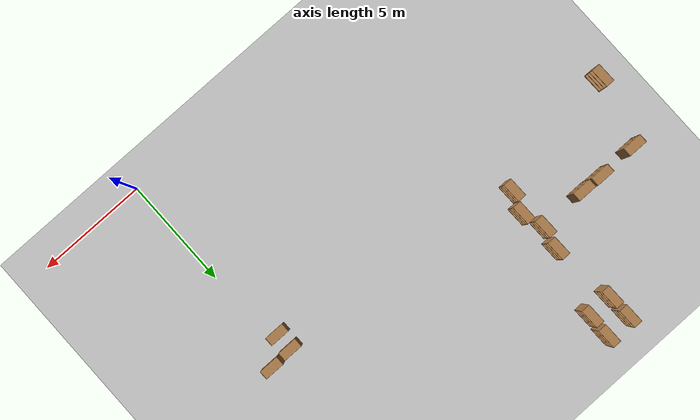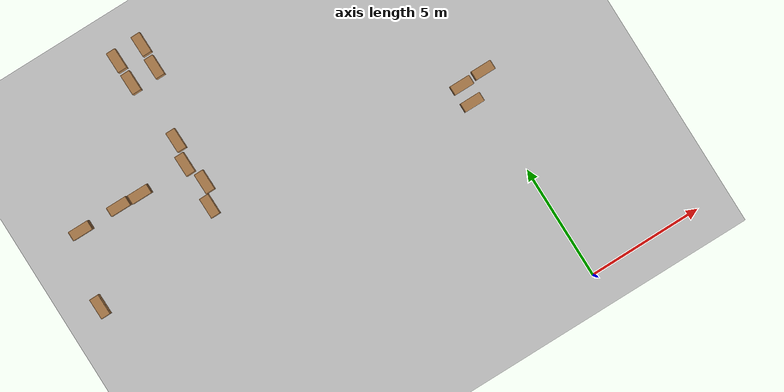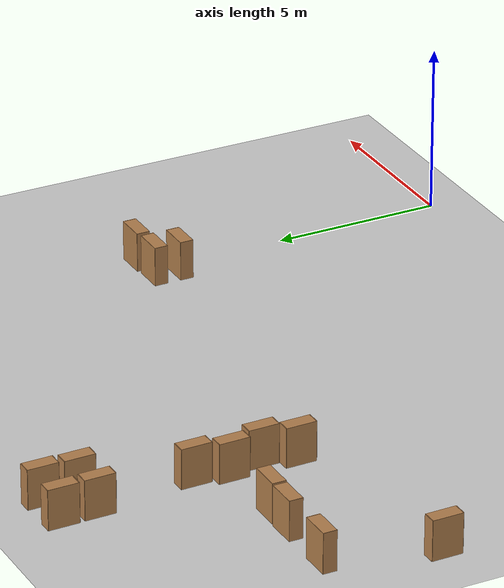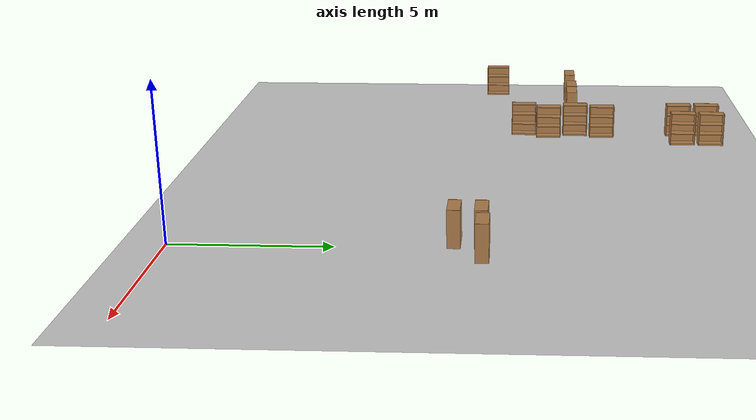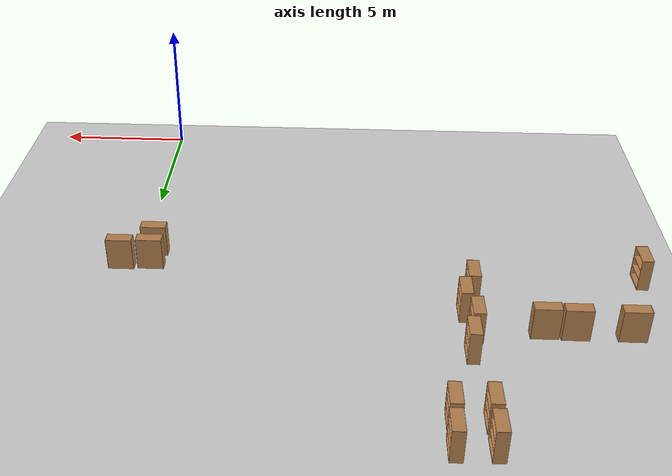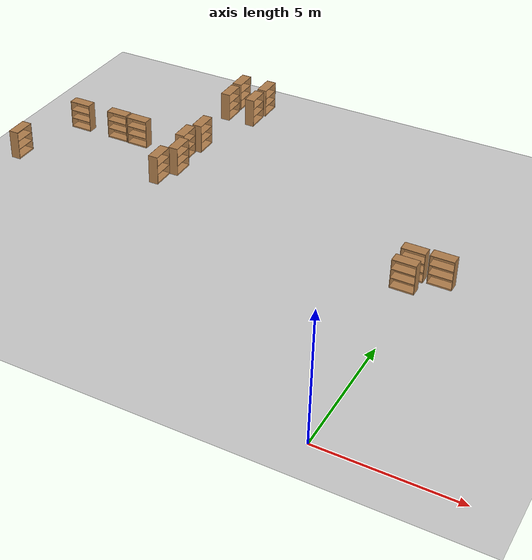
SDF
<sdf version="1.6">
 <world name="default">
  <model name="ground_plane">
   <static>1</static>
   <link name="link">
    <collision name="collision">
     <geometry><plane><normal>0 0 1</normal><size>100 100</size></plane></geometry>
     <surface>
      <contact><collide_bitmask>65535</collide_bitmask></contact>
      <friction><ode><mu>100</mu><mu2>50</mu2></ode></friction>
     </surface>
    </collision>
    <visual name="visual">
     <cast_shadows>0</cast_shadows>
     <geometry><plane><normal>0 0 1</normal><size>100 100</size></plane></geometry>
     <material>
      <script><uri>file://media/materials/scripts/gazebo.material</uri><name>Gazebo/Grey</name></script>
     </material>
    </visual>
   </link>
  </model>
  <model name="bookshelf_clone_clone">
   <static>1</static>
   <link name="link">
    <inertial><mass>1</mass></inertial>
    <collision name="back">
     <pose>0 0.005 0.6 0 -0 0</pose>
     <geometry><box><size>0.9 0.01 1.2</size></box></geometry>
    </collision>
    <visual name="visual1">
     <pose>0 0.005 0.6 0 -0 0</pose>
     <geometry><box><size>0.9 0.01 1.2</size></box></geometry>
     <material>
      <script><uri>file://media/materials/scripts/gazebo.material</uri><name>Gazebo/Wood</name></script>
     </material>
    </visual>
    <collision name="left_side">
     <pose>0.45 -0.195 0.6 0 -0 0</pose>
     <geometry><box><size>0.02 0.4 1.2</size></box></geometry>
    </collision>
    <visual name="visual2">
     <pose>0.45 -0.195 0.6 0 -0 0</pose>
     <geometry><box><size>0.02 0.4 1.2</size></box></geometry>
     <material>
      <script><uri>file://media/materials/scripts/gazebo.material</uri><name>Gazebo/Wood</name></script>
     </material>
    </visual>
    <collision name="right_side">
     <pose>-0.45 -0.195 0.6 0 -0 0</pose>
     <geometry><box><size>0.02 0.4 1.2</size></box></geometry>
    </collision>
    <visual name="visual3">
     <pose>-0.45 -0.195 0.6 0 -0 0</pose>
     <geometry><box><size>0.02 0.4 1.2</size></box></geometry>
     <material>
      <script><uri>file://media/materials/scripts/gazebo.material</uri><name>Gazebo/Wood</name></script>
     </material>
    </visual>
    <collision name="bottom">
     <pose>0 -0.195 0.03 0 -0 0</pose>
     <geometry><box><size>0.88 0.4 0.06</size></box></geometry>
    </collision>
    <visual name="visual4">
     <pose>0 -0.195 0.03 0 -0 0</pose>
     <geometry><box><size>0.88 0.4 0.06</size></box></geometry>
     <material>
      <script><uri>file://media/materials/scripts/gazebo.material</uri><name>Gazebo/Wood</name></script>
     </material>
    </visual>
    <collision name="top">
     <pose>0 -0.195 1.19 0 -0 0</pose>
     <geometry><box><size>0.88 0.4 0.02</size></box></geometry>
    </collision>
    <visual name="visual5">
     <pose>0 -0.195 1.19 0 -0 0</pose>
     <geometry><box><size>0.88 0.4 0.02</size></box></geometry>
     <material>
      <script><uri>file://media/materials/scripts/gazebo.material</uri><name>Gazebo/Wood</name></script>
     </material>
    </visual>
    <collision name="low_shelf">
     <pose>0 -0.195 0.43 0 -0 0</pose>
     <geometry><box><size>0.88 0.4 0.02</size></box></geometry>
    </collision>
    <visual name="visual6">
     <pose>0 -0.195 0.43 0 -0 0</pose>
     <geometry><box><size>0.88 0.4 0.02</size></box></geometry>
     <material>
      <script><uri>file://media/materials/scripts/gazebo.material</uri><name>Gazebo/Wood</name></script>
     </material>
    </visual>
    <collision name="high_shelf">
     <pose>0 -0.195 0.8 0 -0 0</pose>
     <geometry><box><size>0.88 0.4 0.02</size></box></geometry>
    </collision>
    <visual name="visual7">
     <pose>0 -0.195 0.8 0 -0 0</pose>
     <geometry><box><size>0.88 0.4 0.02</size></box></geometry>
     <material>
      <script><uri>file://media/materials/scripts/gazebo.material</uri><name>Gazebo/Wood</name></script>
     </material>
    </visual>
   </link>
   <pose>-16.536 12.6596 0 0 -0 0</pose>
  </model>
  <model name="bookshelf_clone_clone_1">
   <static>1</static>
   <link name="link">
    <inertial><mass>1</mass></inertial>
    <collision name="back">
     <pose>0 0.005 0.6 0 -0 0</pose>
     <geometry><box><size>0.9 0.01 1.2</size></box></geometry>
    </collision>
    <visual name="visual1">
     <pose>0 0.005 0.6 0 -0 0</pose>
     <geometry><box><size>0.9 0.01 1.2</size></box></geometry>
     <material>
      <script><uri>file://media/materials/scripts/gazebo.material</uri><name>Gazebo/Wood</name></script>
     </material>
    </visual>
    <collision name="left_side">
     <pose>0.45 -0.195 0.6 0 -0 0</pose>
     <geometry><box><size>0.02 0.4 1.2</size></box></geometry>
    </collision>
    <visual name="visual2">
     <pose>0.45 -0.195 0.6 0 -0 0</pose>
     <geometry><box><size>0.02 0.4 1.2</size></box></geometry>
     <material>
      <script><uri>file://media/materials/scripts/gazebo.material</uri><name>Gazebo/Wood</name></script>
     </material>
    </visual>
    <collision name="right_side">
     <pose>-0.45 -0.195 0.6 0 -0 0</pose>
     <geometry><box><size>0.02 0.4 1.2</size></box></geometry>
    </collision>
    <visual name="visual3">
     <pose>-0.45 -0.195 0.6 0 -0 0</pose>
     <geometry><box><size>0.02 0.4 1.2</size></box></geometry>
     <material>
      <script><uri>file://media/materials/scripts/gazebo.material</uri><name>Gazebo/Wood</name></script>
     </material>
    </visual>
    <collision name="bottom">
     <pose>0 -0.195 0.03 0 -0 0</pose>
     <geometry><box><size>0.88 0.4 0.06</size></box></geometry>
    </collision>
    <visual name="visual4">
     <pose>0 -0.195 0.03 0 -0 0</pose>
     <geometry><box><size>0.88 0.4 0.06</size></box></geometry>
     <material>
      <script><uri>file://media/materials/scripts/gazebo.material</uri><name>Gazebo/Wood</name></script>
     </material>
    </visual>
    <collision name="top">
     <pose>0 -0.195 1.19 0 -0 0</pose>
     <geometry><box><size>0.88 0.4 0.02</size></box></geometry>
    </collision>
    <visual name="visual5">
     <pose>0 -0.195 1.19 0 -0 0</pose>
     <geometry><box><size>0.88 0.4 0.02</size></box></geometry>
     <material>
      <script><uri>file://media/materials/scripts/gazebo.material</uri><name>Gazebo/Wood</name></script>
     </material>
    </visual>
    <collision name="low_shelf">
     <pose>0 -0.195 0.43 0 -0 0</pose>
     <geometry><box><size>0.88 0.4 0.02</size></box></geometry>
    </collision>
    <visual name="visual6">
     <pose>0 -0.195 0.43 0 -0 0</pose>
     <geometry><box><size>0.88 0.4 0.02</size></box></geometry>
     <material>
      <script><uri>file://media/materials/scripts/gazebo.material</uri><name>Gazebo/Wood</name></script>
     </material>
    </visual>
    <collision name="high_shelf">
     <pose>0 -0.195 0.8 0 -0 0</pose>
     <geometry><box><size>0.88 0.4 0.02</size></box></geometry>
    </collision>
    <visual name="visual7">
     <pose>0 -0.195 0.8 0 -0 0</pose>
     <geometry><box><size>0.88 0.4 0.02</size></box></geometry>
     <material>
      <script><uri>file://media/materials/scripts/gazebo.material</uri><name>Gazebo/Wood</name></script>
     </material>
    </visual>
   </link>
   <pose>-14.7265 12.6733 0 0 -0 0</pose>
  </model>
  <model name="bookshelf_clone_clone_2">
   <static>1</static>
   <link name="link">
    <inertial><mass>1</mass></inertial>
    <collision name="back">
     <pose>0 0.005 0.6 0 -0 0</pose>
     <geometry><box><size>0.9 0.01 1.2</size></box></geometry>
    </collision>
    <visual name="visual1">
     <pose>0 0.005 0.6 0 -0 0</pose>
     <geometry><box><size>0.9 0.01 1.2</size></box></geometry>
     <material>
      <script><uri>file://media/materials/scripts/gazebo.material</uri><name>Gazebo/Wood</name></script>
     </material>
    </visual>
    <collision name="left_side">
     <pose>0.45 -0.195 0.6 0 -0 0</pose>
     <geometry><box><size>0.02 0.4 1.2</size></box></geometry>
    </collision>
    <visual name="visual2">
     <pose>0.45 -0.195 0.6 0 -0 0</pose>
     <geometry><box><size>0.02 0.4 1.2</size></box></geometry>
     <material>
      <script><uri>file://media/materials/scripts/gazebo.material</uri><name>Gazebo/Wood</name></script>
     </material>
    </visual>
    <collision name="right_side">
     <pose>-0.45 -0.195 0.6 0 -0 0</pose>
     <geometry><box><size>0.02 0.4 1.2</size></box></geometry>
    </collision>
    <visual name="visual3">
     <pose>-0.45 -0.195 0.6 0 -0 0</pose>
     <geometry><box><size>0.02 0.4 1.2</size></box></geometry>
     <material>
      <script><uri>file://media/materials/scripts/gazebo.material</uri><name>Gazebo/Wood</name></script>
     </material>
    </visual>
    <collision name="bottom">
     <pose>0 -0.195 0.03 0 -0 0</pose>
     <geometry><box><size>0.88 0.4 0.06</size></box></geometry>
    </collision>
    <visual name="visual4">
     <pose>0 -0.195 0.03 0 -0 0</pose>
     <geometry><box><size>0.88 0.4 0.06</size></box></geometry>
     <material>
      <script><uri>file://media/materials/scripts/gazebo.material</uri><name>Gazebo/Wood</name></script>
     </material>
    </visual>
    <collision name="top">
     <pose>0 -0.195 1.19 0 -0 0</pose>
     <geometry><box><size>0.88 0.4 0.02</size></box></geometry>
    </collision>
    <visual name="visual5">
     <pose>0 -0.195 1.19 0 -0 0</pose>
     <geometry><box><size>0.88 0.4 0.02</size></box></geometry>
     <material>
      <script><uri>file://media/materials/scripts/gazebo.material</uri><name>Gazebo/Wood</name></script>
     </material>
    </visual>
    <collision name="low_shelf">
     <pose>0 -0.195 0.43 0 -0 0</pose>
     <geometry><box><size>0.88 0.4 0.02</size></box></geometry>
    </collision>
    <visual name="visual6">
     <pose>0 -0.195 0.43 0 -0 0</pose>
     <geometry><box><size>0.88 0.4 0.02</size></box></geometry>
     <material>
      <script><uri>file://media/materials/scripts/gazebo.material</uri><name>Gazebo/Wood</name></script>
     </material>
    </visual>
    <collision name="high_shelf">
     <pose>0 -0.195 0.8 0 -0 0</pose>
     <geometry><box><size>0.88 0.4 0.02</size></box></geometry>
    </collision>
    <visual name="visual7">
     <pose>0 -0.195 0.8 0 -0 0</pose>
     <geometry><box><size>0.88 0.4 0.02</size></box></geometry>
     <material>
      <script><uri>file://media/materials/scripts/gazebo.material</uri><name>Gazebo/Wood</name></script>
     </material>
    </visual>
   </link>
   <pose>-13.7508 12.6465 0 0 -0 0</pose>
  </model>
  <model name="bookshelf_clone_clone_0_clone_clone_4">
   <static>1</static>
   <link name="link">
    <inertial><mass>1</mass></inertial>
    <collision name="back">
     <pose>0 0.005 0.6 0 -0 0</pose>
     <geometry><box><size>0.9 0.01 1.2</size></box></geometry>
    </collision>
    <visual name="visual1">
     <pose>0 0.005 0.6 0 -0 0</pose>
     <geometry><box><size>0.9 0.01 1.2</size></box></geometry>
     <material>
      <script><uri>file://media/materials/scripts/gazebo.material</uri><name>Gazebo/Wood</name></script>
     </material>
    </visual>
    <collision name="left_side">
     <pose>0.45 -0.195 0.6 0 -0 0</pose>
     <geometry><box><size>0.02 0.4 1.2</size></box></geometry>
    </collision>
    <visual name="visual2">
     <pose>0.45 -0.195 0.6 0 -0 0</pose>
     <geometry><box><size>0.02 0.4 1.2</size></box></geometry>
     <material>
      <script><uri>file://media/materials/scripts/gazebo.material</uri><name>Gazebo/Wood</name></script>
     </material>
    </visual>
    <collision name="right_side">
     <pose>-0.45 -0.195 0.6 0 -0 0</pose>
     <geometry><box><size>0.02 0.4 1.2</size></box></geometry>
    </collision>
    <visual name="visual3">
     <pose>-0.45 -0.195 0.6 0 -0 0</pose>
     <geometry><box><size>0.02 0.4 1.2</size></box></geometry>
     <material>
      <script><uri>file://media/materials/scripts/gazebo.material</uri><name>Gazebo/Wood</name></script>
     </material>
    </visual>
    <collision name="bottom">
     <pose>0 -0.195 0.03 0 -0 0</pose>
     <geometry><box><size>0.88 0.4 0.06</size></box></geometry>
    </collision>
    <visual name="visual4">
     <pose>0 -0.195 0.03 0 -0 0</pose>
     <geometry><box><size>0.88 0.4 0.06</size></box></geometry>
     <material>
      <script><uri>file://media/materials/scripts/gazebo.material</uri><name>Gazebo/Wood</name></script>
     </material>
    </visual>
    <collision name="top">
     <pose>0 -0.195 1.19 0 -0 0</pose>
     <geometry><box><size>0.88 0.4 0.02</size></box></geometry>
    </collision>
    <visual name="visual5">
     <pose>0 -0.195 1.19 0 -0 0</pose>
     <geometry><box><size>0.88 0.4 0.02</size></box></geometry>
     <material>
      <script><uri>file://media/materials/scripts/gazebo.material</uri><name>Gazebo/Wood</name></script>
     </material>
    </visual>
    <collision name="low_shelf">
     <pose>0 -0.195 0.43 0 -0 0</pose>
     <geometry><box><size>0.88 0.4 0.02</size></box></geometry>
    </collision>
    <visual name="visual6">
     <pose>0 -0.195 0.43 0 -0 0</pose>
     <geometry><box><size>0.88 0.4 0.02</size></box></geometry>
     <material>
      <script><uri>file://media/materials/scripts/gazebo.material</uri><name>Gazebo/Wood</name></script>
     </material>
    </visual>
    <collision name="high_shelf">
     <pose>0 -0.195 0.8 0 -0 0</pose>
     <geometry><box><size>0.88 0.4 0.02</size></box></geometry>
    </collision>
    <visual name="visual7">
     <pose>0 -0.195 0.8 0 -0 0</pose>
     <geometry><box><size>0.88 0.4 0.02</size></box></geometry>
     <material>
      <script><uri>file://media/materials/scripts/gazebo.material</uri><name>Gazebo/Wood</name></script>
     </material>
    </visual>
   </link>
   <pose>-17.6956 9.45552 0 0 -0 1.58018</pose>
  </model>
  <model name="bookshelf_clone_clone_0_clone_clone_4_clone">
   <static>1</static>
   <link name="link">
    <inertial><mass>1</mass></inertial>
    <collision name="back">
     <pose>0 0.005 0.6 0 -0 0</pose>
     <geometry><box><size>0.9 0.01 1.2</size></box></geometry>
    </collision>
    <visual name="visual1">
     <pose>0 0.005 0.6 0 -0 0</pose>
     <geometry><box><size>0.9 0.01 1.2</size></box></geometry>
     <material>
      <script><uri>file://media/materials/scripts/gazebo.material</uri><name>Gazebo/Wood</name></script>
     </material>
    </visual>
    <collision name="left_side">
     <pose>0.45 -0.195 0.6 0 -0 0</pose>
     <geometry><box><size>0.02 0.4 1.2</size></box></geometry>
    </collision>
    <visual name="visual2">
     <pose>0.45 -0.195 0.6 0 -0 0</pose>
     <geometry><box><size>0.02 0.4 1.2</size></box></geometry>
     <material>
      <script><uri>file://media/materials/scripts/gazebo.material</uri><name>Gazebo/Wood</name></script>
     </material>
    </visual>
    <collision name="right_side">
     <pose>-0.45 -0.195 0.6 0 -0 0</pose>
     <geometry><box><size>0.02 0.4 1.2</size></box></geometry>
    </collision>
    <visual name="visual3">
     <pose>-0.45 -0.195 0.6 0 -0 0</pose>
     <geometry><box><size>0.02 0.4 1.2</size></box></geometry>
     <material>
      <script><uri>file://media/materials/scripts/gazebo.material</uri><name>Gazebo/Wood</name></script>
     </material>
    </visual>
    <collision name="bottom">
     <pose>0 -0.195 0.03 0 -0 0</pose>
     <geometry><box><size>0.88 0.4 0.06</size></box></geometry>
    </collision>
    <visual name="visual4">
     <pose>0 -0.195 0.03 0 -0 0</pose>
     <geometry><box><size>0.88 0.4 0.06</size></box></geometry>
     <material>
      <script><uri>file://media/materials/scripts/gazebo.material</uri><name>Gazebo/Wood</name></script>
     </material>
    </visual>
    <collision name="top">
     <pose>0 -0.195 1.19 0 -0 0</pose>
     <geometry><box><size>0.88 0.4 0.02</size></box></geometry>
    </collision>
    <visual name="visual5">
     <pose>0 -0.195 1.19 0 -0 0</pose>
     <geometry><box><size>0.88 0.4 0.02</size></box></geometry>
     <material>
      <script><uri>file://media/materials/scripts/gazebo.material</uri><name>Gazebo/Wood</name></script>
     </material>
    </visual>
    <collision name="low_shelf">
     <pose>0 -0.195 0.43 0 -0 0</pose>
     <geometry><box><size>0.88 0.4 0.02</size></box></geometry>
    </collision>
    <visual name="visual6">
     <pose>0 -0.195 0.43 0 -0 0</pose>
     <geometry><box><size>0.88 0.4 0.02</size></box></geometry>
     <material>
      <script><uri>file://media/materials/scripts/gazebo.material</uri><name>Gazebo/Wood</name></script>
     </material>
    </visual>
    <collision name="high_shelf">
     <pose>0 -0.195 0.8 0 -0 0</pose>
     <geometry><box><size>0.88 0.4 0.02</size></box></geometry>
    </collision>
    <visual name="visual7">
     <pose>0 -0.195 0.8 0 -0 0</pose>
     <geometry><box><size>0.88 0.4 0.02</size></box></geometry>
     <material>
      <script><uri>file://media/materials/scripts/gazebo.material</uri><name>Gazebo/Wood</name></script>
     </material>
    </visual>
   </link>
   <pose>-11.5559 13.501 0 0 -0 1.58018</pose>
  </model>
  <model name="bookshelf_clone_clone_0_clone_clone_4_clone_0">
   <static>1</static>
   <link name="link">
    <inertial><mass>1</mass></inertial>
    <collision name="back">
     <pose>0 0.005 0.6 0 -0 0</pose>
     <geometry><box><size>0.9 0.01 1.2</size></box></geometry>
    </collision>
    <visual name="visual1">
     <pose>0 0.005 0.6 0 -0 0</pose>
     <geometry><box><size>0.9 0.01 1.2</size></box></geometry>
     <material>
      <script><uri>file://media/materials/scripts/gazebo.material</uri><name>Gazebo/Wood</name></script>
     </material>
    </visual>
    <collision name="left_side">
     <pose>0.45 -0.195 0.6 0 -0 0</pose>
     <geometry><box><size>0.02 0.4 1.2</size></box></geometry>
    </collision>
    <visual name="visual2">
     <pose>0.45 -0.195 0.6 0 -0 0</pose>
     <geometry><box><size>0.02 0.4 1.2</size></box></geometry>
     <material>
      <script><uri>file://media/materials/scripts/gazebo.material</uri><name>Gazebo/Wood</name></script>
     </material>
    </visual>
    <collision name="right_side">
     <pose>-0.45 -0.195 0.6 0 -0 0</pose>
     <geometry><box><size>0.02 0.4 1.2</size></box></geometry>
    </collision>
    <visual name="visual3">
     <pose>-0.45 -0.195 0.6 0 -0 0</pose>
     <geometry><box><size>0.02 0.4 1.2</size></box></geometry>
     <material>
      <script><uri>file://media/materials/scripts/gazebo.material</uri><name>Gazebo/Wood</name></script>
     </material>
    </visual>
    <collision name="bottom">
     <pose>0 -0.195 0.03 0 -0 0</pose>
     <geometry><box><size>0.88 0.4 0.06</size></box></geometry>
    </collision>
    <visual name="visual4">
     <pose>0 -0.195 0.03 0 -0 0</pose>
     <geometry><box><size>0.88 0.4 0.06</size></box></geometry>
     <material>
      <script><uri>file://media/materials/scripts/gazebo.material</uri><name>Gazebo/Wood</name></script>
     </material>
    </visual>
    <collision name="top">
     <pose>0 -0.195 1.19 0 -0 0</pose>
     <geometry><box><size>0.88 0.4 0.02</size></box></geometry>
    </collision>
    <visual name="visual5">
     <pose>0 -0.195 1.19 0 -0 0</pose>
     <geometry><box><size>0.88 0.4 0.02</size></box></geometry>
     <material>
      <script><uri>file://media/materials/scripts/gazebo.material</uri><name>Gazebo/Wood</name></script>
     </material>
    </visual>
    <collision name="low_shelf">
     <pose>0 -0.195 0.43 0 -0 0</pose>
     <geometry><box><size>0.88 0.4 0.02</size></box></geometry>
    </collision>
    <visual name="visual6">
     <pose>0 -0.195 0.43 0 -0 0</pose>
     <geometry><box><size>0.88 0.4 0.02</size></box></geometry>
     <material>
      <script><uri>file://media/materials/scripts/gazebo.material</uri><name>Gazebo/Wood</name></script>
     </material>
    </visual>
    <collision name="high_shelf">
     <pose>0 -0.195 0.8 0 -0 0</pose>
     <geometry><box><size>0.88 0.4 0.02</size></box></geometry>
    </collision>
    <visual name="visual7">
     <pose>0 -0.195 0.8 0 -0 0</pose>
     <geometry><box><size>0.88 0.4 0.02</size></box></geometry>
     <material>
      <script><uri>file://media/materials/scripts/gazebo.material</uri><name>Gazebo/Wood</name></script>
     </material>
    </visual>
   </link>
   <pose>-11.7668 12.4979 0 0 -0 1.58018</pose>
  </model>
  <model name="bookshelf_clone_clone_0_clone_clone_4_clone_1">
   <static>1</static>
   <link name="link">
    <inertial><mass>1</mass></inertial>
    <collision name="back">
     <pose>0 0.005 0.6 0 -0 0</pose>
     <geometry><box><size>0.9 0.01 1.2</size></box></geometry>
    </collision>
    <visual name="visual1">
     <pose>0 0.005 0.6 0 -0 0</pose>
     <geometry><box><size>0.9 0.01 1.2</size></box></geometry>
     <material>
      <script><uri>file://media/materials/scripts/gazebo.material</uri><name>Gazebo/Wood</name></script>
     </material>
    </visual>
    <collision name="left_side">
     <pose>0.45 -0.195 0.6 0 -0 0</pose>
     <geometry><box><size>0.02 0.4 1.2</size></box></geometry>
    </collision>
    <visual name="visual2">
     <pose>0.45 -0.195 0.6 0 -0 0</pose>
     <geometry><box><size>0.02 0.4 1.2</size></box></geometry>
     <material>
      <script><uri>file://media/materials/scripts/gazebo.material</uri><name>Gazebo/Wood</name></script>
     </material>
    </visual>
    <collision name="right_side">
     <pose>-0.45 -0.195 0.6 0 -0 0</pose>
     <geometry><box><size>0.02 0.4 1.2</size></box></geometry>
    </collision>
    <visual name="visual3">
     <pose>-0.45 -0.195 0.6 0 -0 0</pose>
     <geometry><box><size>0.02 0.4 1.2</size></box></geometry>
     <material>
      <script><uri>file://media/materials/scripts/gazebo.material</uri><name>Gazebo/Wood</name></script>
     </material>
    </visual>
    <collision name="bottom">
     <pose>0 -0.195 0.03 0 -0 0</pose>
     <geometry><box><size>0.88 0.4 0.06</size></box></geometry>
    </collision>
    <visual name="visual4">
     <pose>0 -0.195 0.03 0 -0 0</pose>
     <geometry><box><size>0.88 0.4 0.06</size></box></geometry>
     <material>
      <script><uri>file://media/materials/scripts/gazebo.material</uri><name>Gazebo/Wood</name></script>
     </material>
    </visual>
    <collision name="top">
     <pose>0 -0.195 1.19 0 -0 0</pose>
     <geometry><box><size>0.88 0.4 0.02</size></box></geometry>
    </collision>
    <visual name="visual5">
     <pose>0 -0.195 1.19 0 -0 0</pose>
     <geometry><box><size>0.88 0.4 0.02</size></box></geometry>
     <material>
      <script><uri>file://media/materials/scripts/gazebo.material</uri><name>Gazebo/Wood</name></script>
     </material>
    </visual>
    <collision name="low_shelf">
     <pose>0 -0.195 0.43 0 -0 0</pose>
     <geometry><box><size>0.88 0.4 0.02</size></box></geometry>
    </collision>
    <visual name="visual6">
     <pose>0 -0.195 0.43 0 -0 0</pose>
     <geometry><box><size>0.88 0.4 0.02</size></box></geometry>
     <material>
      <script><uri>file://media/materials/scripts/gazebo.material</uri><name>Gazebo/Wood</name></script>
     </material>
    </visual>
    <collision name="high_shelf">
     <pose>0 -0.195 0.8 0 -0 0</pose>
     <geometry><box><size>0.88 0.4 0.02</size></box></geometry>
    </collision>
    <visual name="visual7">
     <pose>0 -0.195 0.8 0 -0 0</pose>
     <geometry><box><size>0.88 0.4 0.02</size></box></geometry>
     <material>
      <script><uri>file://media/materials/scripts/gazebo.material</uri><name>Gazebo/Wood</name></script>
     </material>
    </visual>
   </link>
   <pose>-11.4727 11.4806 0 0 -0 1.58018</pose>
  </model>
  <model name="bookshelf_clone_clone_0_clone_clone_4_clone_2">
   <static>1</static>
   <link name="link">
    <inertial><mass>1</mass></inertial>
    <collision name="back">
     <pose>0 0.005 0.6 0 -0 0</pose>
     <geometry><box><size>0.9 0.01 1.2</size></box></geometry>
    </collision>
    <visual name="visual1">
     <pose>0 0.005 0.6 0 -0 0</pose>
     <geometry><box><size>0.9 0.01 1.2</size></box></geometry>
     <material>
      <script><uri>file://media/materials/scripts/gazebo.material</uri><name>Gazebo/Wood</name></script>
     </material>
    </visual>
    <collision name="left_side">
     <pose>0.45 -0.195 0.6 0 -0 0</pose>
     <geometry><box><size>0.02 0.4 1.2</size></box></geometry>
    </collision>
    <visual name="visual2">
     <pose>0.45 -0.195 0.6 0 -0 0</pose>
     <geometry><box><size>0.02 0.4 1.2</size></box></geometry>
     <material>
      <script><uri>file://media/materials/scripts/gazebo.material</uri><name>Gazebo/Wood</name></script>
     </material>
    </visual>
    <collision name="right_side">
     <pose>-0.45 -0.195 0.6 0 -0 0</pose>
     <geometry><box><size>0.02 0.4 1.2</size></box></geometry>
    </collision>
    <visual name="visual3">
     <pose>-0.45 -0.195 0.6 0 -0 0</pose>
     <geometry><box><size>0.02 0.4 1.2</size></box></geometry>
     <material>
      <script><uri>file://media/materials/scripts/gazebo.material</uri><name>Gazebo/Wood</name></script>
     </material>
    </visual>
    <collision name="bottom">
     <pose>0 -0.195 0.03 0 -0 0</pose>
     <geometry><box><size>0.88 0.4 0.06</size></box></geometry>
    </collision>
    <visual name="visual4">
     <pose>0 -0.195 0.03 0 -0 0</pose>
     <geometry><box><size>0.88 0.4 0.06</size></box></geometry>
     <material>
      <script><uri>file://media/materials/scripts/gazebo.material</uri><name>Gazebo/Wood</name></script>
     </material>
    </visual>
    <collision name="top">
     <pose>0 -0.195 1.19 0 -0 0</pose>
     <geometry><box><size>0.88 0.4 0.02</size></box></geometry>
    </collision>
    <visual name="visual5">
     <pose>0 -0.195 1.19 0 -0 0</pose>
     <geometry><box><size>0.88 0.4 0.02</size></box></geometry>
     <material>
      <script><uri>file://media/materials/scripts/gazebo.material</uri><name>Gazebo/Wood</name></script>
     </material>
    </visual>
    <collision name="low_shelf">
     <pose>0 -0.195 0.43 0 -0 0</pose>
     <geometry><box><size>0.88 0.4 0.02</size></box></geometry>
    </collision>
    <visual name="visual6">
     <pose>0 -0.195 0.43 0 -0 0</pose>
     <geometry><box><size>0.88 0.4 0.02</size></box></geometry>
     <material>
      <script><uri>file://media/materials/scripts/gazebo.material</uri><name>Gazebo/Wood</name></script>
     </material>
    </visual>
    <collision name="high_shelf">
     <pose>0 -0.195 0.8 0 -0 0</pose>
     <geometry><box><size>0.88 0.4 0.02</size></box></geometry>
    </collision>
    <visual name="visual7">
     <pose>0 -0.195 0.8 0 -0 0</pose>
     <geometry><box><size>0.88 0.4 0.02</size></box></geometry>
     <material>
      <script><uri>file://media/materials/scripts/gazebo.material</uri><name>Gazebo/Wood</name></script>
     </material>
    </visual>
   </link>
   <pose>-11.8111 10.5449 0 0 -0 1.58018</pose>
  </model>
  <model name="bookshelf_clone_clone_2_clone_2_clone">
   <static>1</static>
   <link name="link">
    <inertial><mass>1</mass></inertial>
    <collision name="back">
     <pose>0 0.005 0.6 0 -0 0</pose>
     <geometry><box><size>0.9 0.01 1.2</size></box></geometry>
    </collision>
    <visual name="visual1">
     <pose>0 0.005 0.6 0 -0 0</pose>
     <geometry><box><size>0.9 0.01 1.2</size></box></geometry>
     <material>
      <script><uri>file://media/materials/scripts/gazebo.material</uri><name>Gazebo/Wood</name></script>
     </material>
    </visual>
    <collision name="left_side">
     <pose>0.45 -0.195 0.6 0 -0 0</pose>
     <geometry><box><size>0.02 0.4 1.2</size></box></geometry>
    </collision>
    <visual name="visual2">
     <pose>0.45 -0.195 0.6 0 -0 0</pose>
     <geometry><box><size>0.02 0.4 1.2</size></box></geometry>
     <material>
      <script><uri>file://media/materials/scripts/gazebo.material</uri><name>Gazebo/Wood</name></script>
     </material>
    </visual>
    <collision name="right_side">
     <pose>-0.45 -0.195 0.6 0 -0 0</pose>
     <geometry><box><size>0.02 0.4 1.2</size></box></geometry>
    </collision>
    <visual name="visual3">
     <pose>-0.45 -0.195 0.6 0 -0 0</pose>
     <geometry><box><size>0.02 0.4 1.2</size></box></geometry>
     <material>
      <script><uri>file://media/materials/scripts/gazebo.material</uri><name>Gazebo/Wood</name></script>
     </material>
    </visual>
    <collision name="bottom">
     <pose>0 -0.195 0.03 0 -0 0</pose>
     <geometry><box><size>0.88 0.4 0.06</size></box></geometry>
    </collision>
    <visual name="visual4">
     <pose>0 -0.195 0.03 0 -0 0</pose>
     <geometry><box><size>0.88 0.4 0.06</size></box></geometry>
     <material>
      <script><uri>file://media/materials/scripts/gazebo.material</uri><name>Gazebo/Wood</name></script>
     </material>
    </visual>
    <collision name="top">
     <pose>0 -0.195 1.19 0 -0 0</pose>
     <geometry><box><size>0.88 0.4 0.02</size></box></geometry>
    </collision>
    <visual name="visual5">
     <pose>0 -0.195 1.19 0 -0 0</pose>
     <geometry><box><size>0.88 0.4 0.02</size></box></geometry>
     <material>
      <script><uri>file://media/materials/scripts/gazebo.material</uri><name>Gazebo/Wood</name></script>
     </material>
    </visual>
    <collision name="low_shelf">
     <pose>0 -0.195 0.43 0 -0 0</pose>
     <geometry><box><size>0.88 0.4 0.02</size></box></geometry>
    </collision>
    <visual name="visual6">
     <pose>0 -0.195 0.43 0 -0 0</pose>
     <geometry><box><size>0.88 0.4 0.02</size></box></geometry>
     <material>
      <script><uri>file://media/materials/scripts/gazebo.material</uri><name>Gazebo/Wood</name></script>
     </material>
    </visual>
    <collision name="high_shelf">
     <pose>0 -0.195 0.8 0 -0 0</pose>
     <geometry><box><size>0.88 0.4 0.02</size></box></geometry>
    </collision>
    <visual name="visual7">
     <pose>0 -0.195 0.8 0 -0 0</pose>
     <geometry><box><size>0.88 0.4 0.02</size></box></geometry>
     <material>
      <script><uri>file://media/materials/scripts/gazebo.material</uri><name>Gazebo/Wood</name></script>
     </material>
    </visual>
   </link>
   <pose>0.595816 9.5427 0 0 -0 0</pose>
  </model>
  <model name="bookshelf_clone_clone_2_clone_2_clone_1">
   <static>1</static>
   <link name="link">
    <inertial><mass>1</mass></inertial>
    <collision name="back">
     <pose>0 0.005 0.6 0 -0 0</pose>
     <geometry><box><size>0.9 0.01 1.2</size></box></geometry>
    </collision>
    <visual name="visual1">
     <pose>0 0.005 0.6 0 -0 0</pose>
     <geometry><box><size>0.9 0.01 1.2</size></box></geometry>
     <material>
      <script><uri>file://media/materials/scripts/gazebo.material</uri><name>Gazebo/Wood</name></script>
     </material>
    </visual>
    <collision name="left_side">
     <pose>0.45 -0.195 0.6 0 -0 0</pose>
     <geometry><box><size>0.02 0.4 1.2</size></box></geometry>
    </collision>
    <visual name="visual2">
     <pose>0.45 -0.195 0.6 0 -0 0</pose>
     <geometry><box><size>0.02 0.4 1.2</size></box></geometry>
     <material>
      <script><uri>file://media/materials/scripts/gazebo.material</uri><name>Gazebo/Wood</name></script>
     </material>
    </visual>
    <collision name="right_side">
     <pose>-0.45 -0.195 0.6 0 -0 0</pose>
     <geometry><box><size>0.02 0.4 1.2</size></box></geometry>
    </collision>
    <visual name="visual3">
     <pose>-0.45 -0.195 0.6 0 -0 0</pose>
     <geometry><box><size>0.02 0.4 1.2</size></box></geometry>
     <material>
      <script><uri>file://media/materials/scripts/gazebo.material</uri><name>Gazebo/Wood</name></script>
     </material>
    </visual>
    <collision name="bottom">
     <pose>0 -0.195 0.03 0 -0 0</pose>
     <geometry><box><size>0.88 0.4 0.06</size></box></geometry>
    </collision>
    <visual name="visual4">
     <pose>0 -0.195 0.03 0 -0 0</pose>
     <geometry><box><size>0.88 0.4 0.06</size></box></geometry>
     <material>
      <script><uri>file://media/materials/scripts/gazebo.material</uri><name>Gazebo/Wood</name></script>
     </material>
    </visual>
    <collision name="top">
     <pose>0 -0.195 1.19 0 -0 0</pose>
     <geometry><box><size>0.88 0.4 0.02</size></box></geometry>
    </collision>
    <visual name="visual5">
     <pose>0 -0.195 1.19 0 -0 0</pose>
     <geometry><box><size>0.88 0.4 0.02</size></box></geometry>
     <material>
      <script><uri>file://media/materials/scripts/gazebo.material</uri><name>Gazebo/Wood</name></script>
     </material>
    </visual>
    <collision name="low_shelf">
     <pose>0 -0.195 0.43 0 -0 0</pose>
     <geometry><box><size>0.88 0.4 0.02</size></box></geometry>
    </collision>
    <visual name="visual6">
     <pose>0 -0.195 0.43 0 -0 0</pose>
     <geometry><box><size>0.88 0.4 0.02</size></box></geometry>
     <material>
      <script><uri>file://media/materials/scripts/gazebo.material</uri><name>Gazebo/Wood</name></script>
     </material>
    </visual>
    <collision name="high_shelf">
     <pose>0 -0.195 0.8 0 -0 0</pose>
     <geometry><box><size>0.88 0.4 0.02</size></box></geometry>
    </collision>
    <visual name="visual7">
     <pose>0 -0.195 0.8 0 -0 0</pose>
     <geometry><box><size>0.88 0.4 0.02</size></box></geometry>
     <material>
      <script><uri>file://media/materials/scripts/gazebo.material</uri><name>Gazebo/Wood</name></script>
     </material>
    </visual>
   </link>
   <pose>-0.446676 9.4842 0 0 -0 0</pose>
  </model>
  <model name="bookshelf_clone_clone_2_clone_2_clone_2">
   <static>1</static>
   <link name="link">
    <inertial><mass>1</mass></inertial>
    <collision name="back">
     <pose>0 0.005 0.6 0 -0 0</pose>
     <geometry><box><size>0.9 0.01 1.2</size></box></geometry>
    </collision>
    <visual name="visual1">
     <pose>0 0.005 0.6 0 -0 0</pose>
     <geometry><box><size>0.9 0.01 1.2</size></box></geometry>
     <material>
      <script><uri>file://media/materials/scripts/gazebo.material</uri><name>Gazebo/Wood</name></script>
     </material>
    </visual>
    <collision name="left_side">
     <pose>0.45 -0.195 0.6 0 -0 0</pose>
     <geometry><box><size>0.02 0.4 1.2</size></box></geometry>
    </collision>
    <visual name="visual2">
     <pose>0.45 -0.195 0.6 0 -0 0</pose>
     <geometry><box><size>0.02 0.4 1.2</size></box></geometry>
     <material>
      <script><uri>file://media/materials/scripts/gazebo.material</uri><name>Gazebo/Wood</name></script>
     </material>
    </visual>
    <collision name="right_side">
     <pose>-0.45 -0.195 0.6 0 -0 0</pose>
     <geometry><box><size>0.02 0.4 1.2</size></box></geometry>
    </collision>
    <visual name="visual3">
     <pose>-0.45 -0.195 0.6 0 -0 0</pose>
     <geometry><box><size>0.02 0.4 1.2</size></box></geometry>
     <material>
      <script><uri>file://media/materials/scripts/gazebo.material</uri><name>Gazebo/Wood</name></script>
     </material>
    </visual>
    <collision name="bottom">
     <pose>0 -0.195 0.03 0 -0 0</pose>
     <geometry><box><size>0.88 0.4 0.06</size></box></geometry>
    </collision>
    <visual name="visual4">
     <pose>0 -0.195 0.03 0 -0 0</pose>
     <geometry><box><size>0.88 0.4 0.06</size></box></geometry>
     <material>
      <script><uri>file://media/materials/scripts/gazebo.material</uri><name>Gazebo/Wood</name></script>
     </material>
    </visual>
    <collision name="top">
     <pose>0 -0.195 1.19 0 -0 0</pose>
     <geometry><box><size>0.88 0.4 0.02</size></box></geometry>
    </collision>
    <visual name="visual5">
     <pose>0 -0.195 1.19 0 -0 0</pose>
     <geometry><box><size>0.88 0.4 0.02</size></box></geometry>
     <material>
      <script><uri>file://media/materials/scripts/gazebo.material</uri><name>Gazebo/Wood</name></script>
     </material>
    </visual>
    <collision name="low_shelf">
     <pose>0 -0.195 0.43 0 -0 0</pose>
     <geometry><box><size>0.88 0.4 0.02</size></box></geometry>
    </collision>
    <visual name="visual6">
     <pose>0 -0.195 0.43 0 -0 0</pose>
     <geometry><box><size>0.88 0.4 0.02</size></box></geometry>
     <material>
      <script><uri>file://media/materials/scripts/gazebo.material</uri><name>Gazebo/Wood</name></script>
     </material>
    </visual>
    <collision name="high_shelf">
     <pose>0 -0.195 0.8 0 -0 0</pose>
     <geometry><box><size>0.88 0.4 0.02</size></box></geometry>
    </collision>
    <visual name="visual7">
     <pose>0 -0.195 0.8 0 -0 0</pose>
     <geometry><box><size>0.88 0.4 0.02</size></box></geometry>
     <material>
      <script><uri>file://media/materials/scripts/gazebo.material</uri><name>Gazebo/Wood</name></script>
     </material>
    </visual>
   </link>
   <pose>-0.454479 8.67887 0 0 -0 0</pose>
  </model>
  <model name="bookshelf_clone_clone_0_clone_clone_4_clone_clone">
   <static>1</static>
   <link name="link">
    <inertial><mass>1</mass></inertial>
    <collision name="back">
     <pose>0 0.005 0.6 0 -0 0</pose>
     <geometry><box><size>0.9 0.01 1.2</size></box></geometry>
    </collision>
    <visual name="visual1">
     <pose>0 0.005 0.6 0 -0 0</pose>
     <geometry><box><size>0.9 0.01 1.2</size></box></geometry>
     <material>
      <script><uri>file://media/materials/scripts/gazebo.material</uri><name>Gazebo/Wood</name></script>
     </material>
    </visual>
    <collision name="left_side">
     <pose>0.45 -0.195 0.6 0 -0 0</pose>
     <geometry><box><size>0.02 0.4 1.2</size></box></geometry>
    </collision>
    <visual name="visual2">
     <pose>0.45 -0.195 0.6 0 -0 0</pose>
     <geometry><box><size>0.02 0.4 1.2</size></box></geometry>
     <material>
      <script><uri>file://media/materials/scripts/gazebo.material</uri><name>Gazebo/Wood</name></script>
     </material>
    </visual>
    <collision name="right_side">
     <pose>-0.45 -0.195 0.6 0 -0 0</pose>
     <geometry><box><size>0.02 0.4 1.2</size></box></geometry>
    </collision>
    <visual name="visual3">
     <pose>-0.45 -0.195 0.6 0 -0 0</pose>
     <geometry><box><size>0.02 0.4 1.2</size></box></geometry>
     <material>
      <script><uri>file://media/materials/scripts/gazebo.material</uri><name>Gazebo/Wood</name></script>
     </material>
    </visual>
    <collision name="bottom">
     <pose>0 -0.195 0.03 0 -0 0</pose>
     <geometry><box><size>0.88 0.4 0.06</size></box></geometry>
    </collision>
    <visual name="visual4">
     <pose>0 -0.195 0.03 0 -0 0</pose>
     <geometry><box><size>0.88 0.4 0.06</size></box></geometry>
     <material>
      <script><uri>file://media/materials/scripts/gazebo.material</uri><name>Gazebo/Wood</name></script>
     </material>
    </visual>
    <collision name="top">
     <pose>0 -0.195 1.19 0 -0 0</pose>
     <geometry><box><size>0.88 0.4 0.02</size></box></geometry>
    </collision>
    <visual name="visual5">
     <pose>0 -0.195 1.19 0 -0 0</pose>
     <geometry><box><size>0.88 0.4 0.02</size></box></geometry>
     <material>
      <script><uri>file://media/materials/scripts/gazebo.material</uri><name>Gazebo/Wood</name></script>
     </material>
    </visual>
    <collision name="low_shelf">
     <pose>0 -0.195 0.43 0 -0 0</pose>
     <geometry><box><size>0.88 0.4 0.02</size></box></geometry>
    </collision>
    <visual name="visual6">
     <pose>0 -0.195 0.43 0 -0 0</pose>
     <geometry><box><size>0.88 0.4 0.02</size></box></geometry>
     <material>
      <script><uri>file://media/materials/scripts/gazebo.material</uri><name>Gazebo/Wood</name></script>
     </material>
    </visual>
    <collision name="high_shelf">
     <pose>0 -0.195 0.8 0 -0 0</pose>
     <geometry><box><size>0.88 0.4 0.02</size></box></geometry>
    </collision>
    <visual name="visual7">
     <pose>0 -0.195 0.8 0 -0 0</pose>
     <geometry><box><size>0.88 0.4 0.02</size></box></geometry>
     <material>
      <script><uri>file://media/materials/scripts/gazebo.material</uri><name>Gazebo/Wood</name></script>
     </material>
    </visual>
   </link>
   <pose>-10.6968 17.509 0 0 -0 1.58018</pose>
  </model>
  <model name="bookshelf_clone_clone_0_clone_clone_4_clone_clone_0">
   <static>1</static>
   <link name="link">
    <inertial><mass>1</mass></inertial>
    <collision name="back">
     <pose>0 0.005 0.6 0 -0 0</pose>
     <geometry><box><size>0.9 0.01 1.2</size></box></geometry>
    </collision>
    <visual name="visual1">
     <pose>0 0.005 0.6 0 -0 0</pose>
     <geometry><box><size>0.9 0.01 1.2</size></box></geometry>
     <material>
      <script><uri>file://media/materials/scripts/gazebo.material</uri><name>Gazebo/Wood</name></script>
     </material>
    </visual>
    <collision name="left_side">
     <pose>0.45 -0.195 0.6 0 -0 0</pose>
     <geometry><box><size>0.02 0.4 1.2</size></box></geometry>
    </collision>
    <visual name="visual2">
     <pose>0.45 -0.195 0.6 0 -0 0</pose>
     <geometry><box><size>0.02 0.4 1.2</size></box></geometry>
     <material>
      <script><uri>file://media/materials/scripts/gazebo.material</uri><name>Gazebo/Wood</name></script>
     </material>
    </visual>
    <collision name="right_side">
     <pose>-0.45 -0.195 0.6 0 -0 0</pose>
     <geometry><box><size>0.02 0.4 1.2</size></box></geometry>
    </collision>
    <visual name="visual3">
     <pose>-0.45 -0.195 0.6 0 -0 0</pose>
     <geometry><box><size>0.02 0.4 1.2</size></box></geometry>
     <material>
      <script><uri>file://media/materials/scripts/gazebo.material</uri><name>Gazebo/Wood</name></script>
     </material>
    </visual>
    <collision name="bottom">
     <pose>0 -0.195 0.03 0 -0 0</pose>
     <geometry><box><size>0.88 0.4 0.06</size></box></geometry>
    </collision>
    <visual name="visual4">
     <pose>0 -0.195 0.03 0 -0 0</pose>
     <geometry><box><size>0.88 0.4 0.06</size></box></geometry>
     <material>
      <script><uri>file://media/materials/scripts/gazebo.material</uri><name>Gazebo/Wood</name></script>
     </material>
    </visual>
    <collision name="top">
     <pose>0 -0.195 1.19 0 -0 0</pose>
     <geometry><box><size>0.88 0.4 0.02</size></box></geometry>
    </collision>
    <visual name="visual5">
     <pose>0 -0.195 1.19 0 -0 0</pose>
     <geometry><box><size>0.88 0.4 0.02</size></box></geometry>
     <material>
      <script><uri>file://media/materials/scripts/gazebo.material</uri><name>Gazebo/Wood</name></script>
     </material>
    </visual>
    <collision name="low_shelf">
     <pose>0 -0.195 0.43 0 -0 0</pose>
     <geometry><box><size>0.88 0.4 0.02</size></box></geometry>
    </collision>
    <visual name="visual6">
     <pose>0 -0.195 0.43 0 -0 0</pose>
     <geometry><box><size>0.88 0.4 0.02</size></box></geometry>
     <material>
      <script><uri>file://media/materials/scripts/gazebo.material</uri><name>Gazebo/Wood</name></script>
     </material>
    </visual>
    <collision name="high_shelf">
     <pose>0 -0.195 0.8 0 -0 0</pose>
     <geometry><box><size>0.88 0.4 0.02</size></box></geometry>
    </collision>
    <visual name="visual7">
     <pose>0 -0.195 0.8 0 -0 0</pose>
     <geometry><box><size>0.88 0.4 0.02</size></box></geometry>
     <material>
      <script><uri>file://media/materials/scripts/gazebo.material</uri><name>Gazebo/Wood</name></script>
     </material>
    </visual>
   </link>
   <pose>-10.7278 16.4656 0 0 -0 1.58018</pose>
  </model>
  <model name="bookshelf_clone_clone_0_clone_clone_4_clone_clone_1">
   <static>1</static>
   <link name="link">
    <inertial><mass>1</mass></inertial>
    <collision name="back">
     <pose>0 0.005 0.6 0 -0 0</pose>
     <geometry><box><size>0.9 0.01 1.2</size></box></geometry>
    </collision>
    <visual name="visual1">
     <pose>0 0.005 0.6 0 -0 0</pose>
     <geometry><box><size>0.9 0.01 1.2</size></box></geometry>
     <material>
      <script><uri>file://media/materials/scripts/gazebo.material</uri><name>Gazebo/Wood</name></script>
     </material>
    </visual>
    <collision name="left_side">
     <pose>0.45 -0.195 0.6 0 -0 0</pose>
     <geometry><box><size>0.02 0.4 1.2</size></box></geometry>
    </collision>
    <visual name="visual2">
     <pose>0.45 -0.195 0.6 0 -0 0</pose>
     <geometry><box><size>0.02 0.4 1.2</size></box></geometry>
     <material>
      <script><uri>file://media/materials/scripts/gazebo.material</uri><name>Gazebo/Wood</name></script>
     </material>
    </visual>
    <collision name="right_side">
     <pose>-0.45 -0.195 0.6 0 -0 0</pose>
     <geometry><box><size>0.02 0.4 1.2</size></box></geometry>
    </collision>
    <visual name="visual3">
     <pose>-0.45 -0.195 0.6 0 -0 0</pose>
     <geometry><box><size>0.02 0.4 1.2</size></box></geometry>
     <material>
      <script><uri>file://media/materials/scripts/gazebo.material</uri><name>Gazebo/Wood</name></script>
     </material>
    </visual>
    <collision name="bottom">
     <pose>0 -0.195 0.03 0 -0 0</pose>
     <geometry><box><size>0.88 0.4 0.06</size></box></geometry>
    </collision>
    <visual name="visual4">
     <pose>0 -0.195 0.03 0 -0 0</pose>
     <geometry><box><size>0.88 0.4 0.06</size></box></geometry>
     <material>
      <script><uri>file://media/materials/scripts/gazebo.material</uri><name>Gazebo/Wood</name></script>
     </material>
    </visual>
    <collision name="top">
     <pose>0 -0.195 1.19 0 -0 0</pose>
     <geometry><box><size>0.88 0.4 0.02</size></box></geometry>
    </collision>
    <visual name="visual5">
     <pose>0 -0.195 1.19 0 -0 0</pose>
     <geometry><box><size>0.88 0.4 0.02</size></box></geometry>
     <material>
      <script><uri>file://media/materials/scripts/gazebo.material</uri><name>Gazebo/Wood</name></script>
     </material>
    </visual>
    <collision name="low_shelf">
     <pose>0 -0.195 0.43 0 -0 0</pose>
     <geometry><box><size>0.88 0.4 0.02</size></box></geometry>
    </collision>
    <visual name="visual6">
     <pose>0 -0.195 0.43 0 -0 0</pose>
     <geometry><box><size>0.88 0.4 0.02</size></box></geometry>
     <material>
      <script><uri>file://media/materials/scripts/gazebo.material</uri><name>Gazebo/Wood</name></script>
     </material>
    </visual>
    <collision name="high_shelf">
     <pose>0 -0.195 0.8 0 -0 0</pose>
     <geometry><box><size>0.88 0.4 0.02</size></box></geometry>
    </collision>
    <visual name="visual7">
     <pose>0 -0.195 0.8 0 -0 0</pose>
     <geometry><box><size>0.88 0.4 0.02</size></box></geometry>
     <material>
      <script><uri>file://media/materials/scripts/gazebo.material</uri><name>Gazebo/Wood</name></script>
     </material>
    </visual>
   </link>
   <pose>-11.8835 17.4801 0 0 -0 1.58018</pose>
  </model>
  <model name="bookshelf_clone_clone_0_clone_clone_4_clone_clone_2">
   <static>1</static>
   <link name="link">
    <inertial><mass>1</mass></inertial>
    <collision name="back">
     <pose>0 0.005 0.6 0 -0 0</pose>
     <geometry><box><size>0.9 0.01 1.2</size></box></geometry>
    </collision>
    <visual name="visual1">
     <pose>0 0.005 0.6 0 -0 0</pose>
     <geometry><box><size>0.9 0.01 1.2</size></box></geometry>
     <material>
      <script><uri>file://media/materials/scripts/gazebo.material</uri><name>Gazebo/Wood</name></script>
     </material>
    </visual>
    <collision name="left_side">
     <pose>0.45 -0.195 0.6 0 -0 0</pose>
     <geometry><box><size>0.02 0.4 1.2</size></box></geometry>
    </collision>
    <visual name="visual2">
     <pose>0.45 -0.195 0.6 0 -0 0</pose>
     <geometry><box><size>0.02 0.4 1.2</size></box></geometry>
     <material>
      <script><uri>file://media/materials/scripts/gazebo.material</uri><name>Gazebo/Wood</name></script>
     </material>
    </visual>
    <collision name="right_side">
     <pose>-0.45 -0.195 0.6 0 -0 0</pose>
     <geometry><box><size>0.02 0.4 1.2</size></box></geometry>
    </collision>
    <visual name="visual3">
     <pose>-0.45 -0.195 0.6 0 -0 0</pose>
     <geometry><box><size>0.02 0.4 1.2</size></box></geometry>
     <material>
      <script><uri>file://media/materials/scripts/gazebo.material</uri><name>Gazebo/Wood</name></script>
     </material>
    </visual>
    <collision name="bottom">
     <pose>0 -0.195 0.03 0 -0 0</pose>
     <geometry><box><size>0.88 0.4 0.06</size></box></geometry>
    </collision>
    <visual name="visual4">
     <pose>0 -0.195 0.03 0 -0 0</pose>
     <geometry><box><size>0.88 0.4 0.06</size></box></geometry>
     <material>
      <script><uri>file://media/materials/scripts/gazebo.material</uri><name>Gazebo/Wood</name></script>
     </material>
    </visual>
    <collision name="top">
     <pose>0 -0.195 1.19 0 -0 0</pose>
     <geometry><box><size>0.88 0.4 0.02</size></box></geometry>
    </collision>
    <visual name="visual5">
     <pose>0 -0.195 1.19 0 -0 0</pose>
     <geometry><box><size>0.88 0.4 0.02</size></box></geometry>
     <material>
      <script><uri>file://media/materials/scripts/gazebo.material</uri><name>Gazebo/Wood</name></script>
     </material>
    </visual>
    <collision name="low_shelf">
     <pose>0 -0.195 0.43 0 -0 0</pose>
     <geometry><box><size>0.88 0.4 0.02</size></box></geometry>
    </collision>
    <visual name="visual6">
     <pose>0 -0.195 0.43 0 -0 0</pose>
     <geometry><box><size>0.88 0.4 0.02</size></box></geometry>
     <material>
      <script><uri>file://media/materials/scripts/gazebo.material</uri><name>Gazebo/Wood</name></script>
     </material>
    </visual>
    <collision name="high_shelf">
     <pose>0 -0.195 0.8 0 -0 0</pose>
     <geometry><box><size>0.88 0.4 0.02</size></box></geometry>
    </collision>
    <visual name="visual7">
     <pose>0 -0.195 0.8 0 -0 0</pose>
     <geometry><box><size>0.88 0.4 0.02</size></box></geometry>
     <material>
      <script><uri>file://media/materials/scripts/gazebo.material</uri><name>Gazebo/Wood</name></script>
     </material>
    </visual>
   </link>
   <pose>-11.8618 16.429 0 0 -0 1.58018</pose>
  </model>
 </world>
</sdf>
